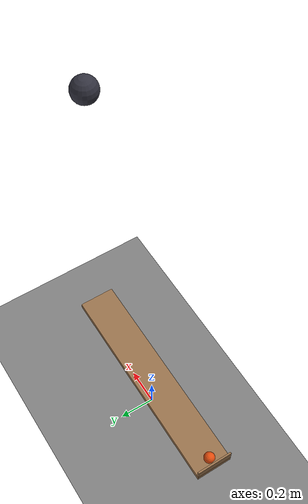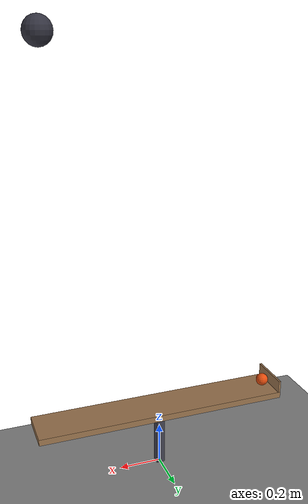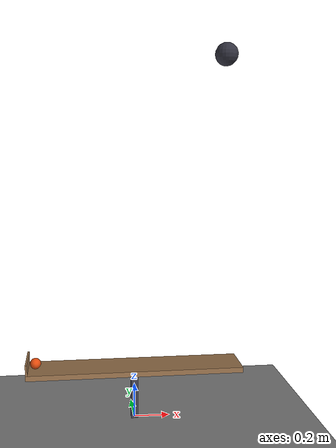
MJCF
<mujoco model="seesaw_throw">
  <compiler angle="radian"/>
  <option timestep="0.002"/>
  <worldbody>
    <geom name="floor" type="plane" size="8 8 0.1" friction="0.8 0.005 0.002"/>
    <body name="fulcrum">
      <geom name="fulcrum" type="box" pos="0 0 0.13" size="0.02 0.02 0.13" rgba="0.25 0.25 0.3 1"/>
    </body>
    <body name="seesaw" pos="0 0 0.3">
      <joint name="seesaw_hinge" type="hinge" pos="0 0 0" axis="0 1 0" limited="true" range="-0.436332 0.436332"/>
      <geom name="seesaw" type="box" pos="0 0 0" size="0.6 0.1 0.015" mass="0.3" friction="0.8 0.005 0.002" rgba="0.6 0.45 0.3 1"/>
      <geom name="lip" type="box" pos="-0.595 0 0.045" size="0.005 0.1 0.03" mass="0.02" rgba="0.6 0.45 0.3 1"/>
    </body>
    <body name="ball" pos="-0.55 0 0.345">
      <freejoint/>
      <geom name="ball" type="sphere" pos="0 0 0" size="0.03" mass="0.1" condim="6" friction="0.8 0.01 0.004" rgba="0.9 0.3 0.05 1"/>
    </body>
    <body name="weight" pos="0.48 0 2">
      <freejoint/>
      <geom name="weight" type="sphere" pos="0 0 0" size="0.06" mass="1" friction="0.8 0.01 0.004" solref="0.01 1" rgba="0.2 0.2 0.25 1"/>
    </body>
  </worldbody>
  <keyframe>
    <key name="start" qpos="0 -0.55 0 0.345 1 0 0 0 0.48 0 2 1 0 0 0" qvel="0 0 0 0 0 0 0 0 0 0 0 0 0"/>
  </keyframe>
</mujoco>
